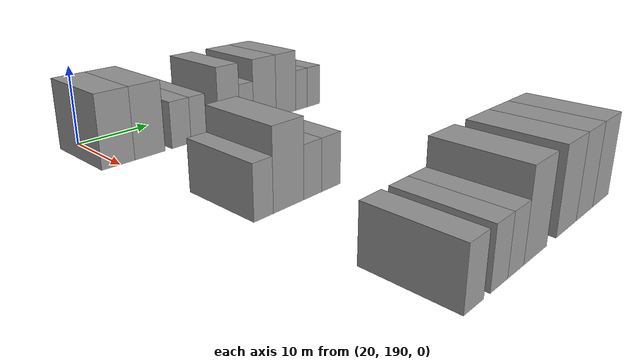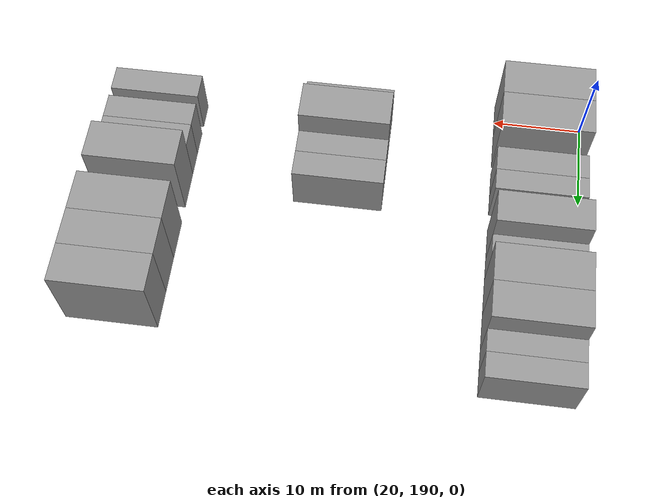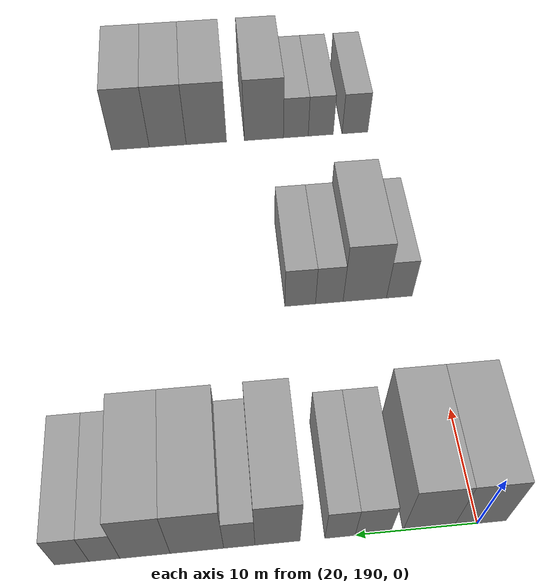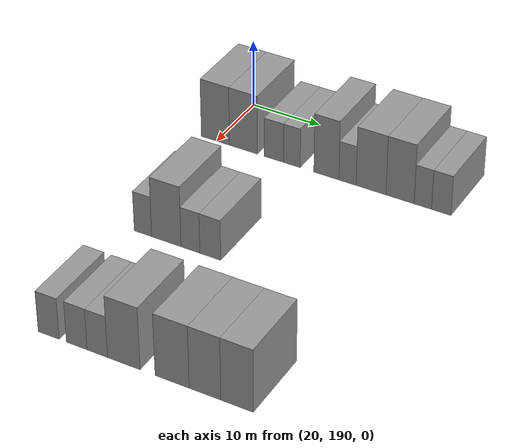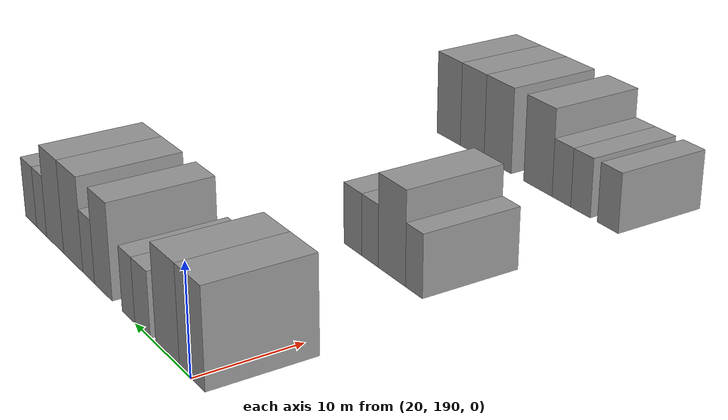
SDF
<sdf version="1.6">
 <world name="default">
  <model name="building_105">
   <static>1</static>
   <pose>25.0000 189.8012 0 0.000000 0.000000 0.000000</pose>
   <link name="link">
    <pose>0 0 4.50 0 0 0</pose>
    <collision name="collision"><geometry><box><size>10.0000 4.2934 9.0000</size></box></geometry></collision>
    <visual name="visual">
     <cast_shadows>0</cast_shadows>
     <geometry><box><size>10.0000 4.2934 9.0000</size></box></geometry>
     <material>
      <script>
       <uri>model://grey_wall/materials/scripts</uri>
       <uri>model://grey_wall/materials/textures</uri>
       <name>vrc/grey_wall</name>
      </script>
     </material>
    </visual>
   </link>
  </model>
  <model name="building_106">
   <static>1</static>
   <pose>25.0000 194.0590 0 0.000000 0.000000 0.000000</pose>
   <link name="link">
    <pose>0 0 4.50 0 0 0</pose>
    <collision name="collision"><geometry><box><size>10.0000 4.2221 9.0000</size></box></geometry></collision>
    <visual name="visual">
     <cast_shadows>0</cast_shadows>
     <geometry><box><size>10.0000 4.2221 9.0000</size></box></geometry>
     <material>
      <script>
       <uri>model://grey_wall/materials/scripts</uri>
       <uri>model://grey_wall/materials/textures</uri>
       <name>vrc/grey_wall</name>
      </script>
     </material>
    </visual>
   </link>
  </model>
  <model name="building_107">
   <static>1</static>
   <pose>25.0000 198.6280 0 0.000000 0.000000 0.000000</pose>
   <link name="link">
    <pose>0 0 3.00 0 0 0</pose>
    <collision name="collision"><geometry><box><size>10.0000 2.9160 6.0000</size></box></geometry></collision>
    <visual name="visual">
     <cast_shadows>0</cast_shadows>
     <geometry><box><size>10.0000 2.9160 6.0000</size></box></geometry>
     <material>
      <script>
       <uri>model://grey_wall/materials/scripts</uri>
       <uri>model://grey_wall/materials/textures</uri>
       <name>vrc/grey_wall</name>
      </script>
     </material>
    </visual>
   </link>
  </model>
  <model name="building_108">
   <static>1</static>
   <pose>25.0000 201.3166 0 0.000000 0.000000 0.000000</pose>
   <link name="link">
    <pose>0 0 3.00 0 0 0</pose>
    <collision name="collision"><geometry><box><size>10.0000 2.4613 6.0000</size></box></geometry></collision>
    <visual name="visual">
     <cast_shadows>0</cast_shadows>
     <geometry><box><size>10.0000 2.4613 6.0000</size></box></geometry>
     <material>
      <script>
       <uri>model://grey_wall/materials/scripts</uri>
       <uri>model://grey_wall/materials/textures</uri>
       <name>vrc/grey_wall</name>
      </script>
     </material>
    </visual>
   </link>
  </model>
  <model name="building_109">
   <static>1</static>
   <pose>25.0000 206.3667 0 0.000000 0.000000 0.000000</pose>
   <link name="link">
    <pose>0 0 4.50 0 0 0</pose>
    <collision name="collision"><geometry><box><size>10.0000 3.6388 9.0000</size></box></geometry></collision>
    <visual name="visual">
     <cast_shadows>0</cast_shadows>
     <geometry><box><size>10.0000 3.6388 9.0000</size></box></geometry>
     <material>
      <script>
       <uri>model://grey_wall/materials/scripts</uri>
       <uri>model://grey_wall/materials/textures</uri>
       <name>vrc/grey_wall</name>
      </script>
     </material>
    </visual>
   </link>
  </model>
  <model name="building_110">
   <static>1</static>
   <pose>25.0000 209.4341 0 0.000000 0.000000 0.000000</pose>
   <link name="link">
    <pose>0 0 3.00 0 0 0</pose>
    <collision name="collision"><geometry><box><size>10.0000 2.4960 6.0000</size></box></geometry></collision>
    <visual name="visual">
     <cast_shadows>0</cast_shadows>
     <geometry><box><size>10.0000 2.4960 6.0000</size></box></geometry>
     <material>
      <script>
       <uri>model://grey_wall/materials/scripts</uri>
       <uri>model://grey_wall/materials/textures</uri>
       <name>vrc/grey_wall</name>
      </script>
     </material>
    </visual>
   </link>
  </model>
  <model name="building_111">
   <static>1</static>
   <pose>25.0000 212.8134 0 0.000000 0.000000 0.000000</pose>
   <link name="link">
    <pose>0 0 4.50 0 0 0</pose>
    <collision name="collision"><geometry><box><size>10.0000 4.2626 9.0000</size></box></geometry></collision>
    <visual name="visual">
     <cast_shadows>0</cast_shadows>
     <geometry><box><size>10.0000 4.2626 9.0000</size></box></geometry>
     <material>
      <script>
       <uri>model://grey_wall/materials/scripts</uri>
       <uri>model://grey_wall/materials/textures</uri>
       <name>vrc/grey_wall</name>
      </script>
     </material>
    </visual>
   </link>
  </model>
  <model name="building_112">
   <static>1</static>
   <pose>25.0000 216.9367 0 0.000000 0.000000 0.000000</pose>
   <link name="link">
    <pose>0 0 4.50 0 0 0</pose>
    <collision name="collision"><geometry><box><size>10.0000 3.9840 9.0000</size></box></geometry></collision>
    <visual name="visual">
     <cast_shadows>0</cast_shadows>
     <geometry><box><size>10.0000 3.9840 9.0000</size></box></geometry>
     <material>
      <script>
       <uri>model://grey_wall/materials/scripts</uri>
       <uri>model://grey_wall/materials/textures</uri>
       <name>vrc/grey_wall</name>
      </script>
     </material>
    </visual>
   </link>
  </model>
  <model name="building_113">
   <static>1</static>
   <pose>25.0000 220.1398 0 0.000000 0.000000 0.000000</pose>
   <link name="link">
    <pose>0 0 3.00 0 0 0</pose>
    <collision name="collision"><geometry><box><size>10.0000 2.4222 6.0000</size></box></geometry></collision>
    <visual name="visual">
     <cast_shadows>0</cast_shadows>
     <geometry><box><size>10.0000 2.4222 6.0000</size></box></geometry>
     <material>
      <script>
       <uri>model://grey_wall/materials/scripts</uri>
       <uri>model://grey_wall/materials/textures</uri>
       <name>vrc/grey_wall</name>
      </script>
     </material>
    </visual>
   </link>
  </model>
  <model name="building_114">
   <static>1</static>
   <pose>25.0000 222.7028 0 0.000000 0.000000 0.000000</pose>
   <link name="link">
    <pose>0 0 3.00 0 0 0</pose>
    <collision name="collision"><geometry><box><size>10.0000 2.7039 6.0000</size></box></geometry></collision>
    <visual name="visual">
     <cast_shadows>0</cast_shadows>
     <geometry><box><size>10.0000 2.7039 6.0000</size></box></geometry>
     <material>
      <script>
       <uri>model://grey_wall/materials/scripts</uri>
       <uri>model://grey_wall/materials/textures</uri>
       <name>vrc/grey_wall</name>
      </script>
     </material>
    </visual>
   </link>
  </model>
  <model name="building_218">
   <static>1</static>
   <pose>47.0000 192.3309 0 0.000000 0.000000 0.000000</pose>
   <link name="link">
    <pose>0 0 3.00 0 0 0</pose>
    <collision name="collision"><geometry><box><size>10.0000 2.5325 6.0000</size></box></geometry></collision>
    <visual name="visual">
     <cast_shadows>0</cast_shadows>
     <geometry><box><size>10.0000 2.5325 6.0000</size></box></geometry>
     <material>
      <script>
       <uri>model://grey_wall/materials/scripts</uri>
       <uri>model://grey_wall/materials/textures</uri>
       <name>vrc/grey_wall</name>
      </script>
     </material>
    </visual>
   </link>
  </model>
  <model name="building_219">
   <static>1</static>
   <pose>47.0000 195.7220 0 0.000000 0.000000 0.000000</pose>
   <link name="link">
    <pose>0 0 4.50 0 0 0</pose>
    <collision name="collision"><geometry><box><size>10.0000 4.2497 9.0000</size></box></geometry></collision>
    <visual name="visual">
     <cast_shadows>0</cast_shadows>
     <geometry><box><size>10.0000 4.2497 9.0000</size></box></geometry>
     <material>
      <script>
       <uri>model://grey_wall/materials/scripts</uri>
       <uri>model://grey_wall/materials/textures</uri>
       <name>vrc/grey_wall</name>
      </script>
     </material>
    </visual>
   </link>
  </model>
  <model name="building_220">
   <static>1</static>
   <pose>47.0000 199.1849 0 0.000000 0.000000 0.000000</pose>
   <link name="link">
    <pose>0 0 3.00 0 0 0</pose>
    <collision name="collision"><geometry><box><size>10.0000 2.6760 6.0000</size></box></geometry></collision>
    <visual name="visual">
     <cast_shadows>0</cast_shadows>
     <geometry><box><size>10.0000 2.6760 6.0000</size></box></geometry>
     <material>
      <script>
       <uri>model://grey_wall/materials/scripts</uri>
       <uri>model://grey_wall/materials/textures</uri>
       <name>vrc/grey_wall</name>
      </script>
     </material>
    </visual>
   </link>
  </model>
  <model name="building_221">
   <static>1</static>
   <pose>47.0000 202.0055 0 0.000000 0.000000 0.000000</pose>
   <link name="link">
    <pose>0 0 3.00 0 0 0</pose>
    <collision name="collision"><geometry><box><size>10.0000 2.9652 6.0000</size></box></geometry></collision>
    <visual name="visual">
     <cast_shadows>0</cast_shadows>
     <geometry><box><size>10.0000 2.9652 6.0000</size></box></geometry>
     <material>
      <script>
       <uri>model://grey_wall/materials/scripts</uri>
       <uri>model://grey_wall/materials/textures</uri>
       <name>vrc/grey_wall</name>
      </script>
     </material>
    </visual>
   </link>
  </model>
  <model name="building_327">
   <static>1</static>
   <pose>69.0000 193.2638 0 0.000000 0.000000 0.000000</pose>
   <link name="link">
    <pose>0 0 3.00 0 0 0</pose>
    <collision name="collision"><geometry><box><size>10.0000 2.9274 6.0000</size></box></geometry></collision>
    <visual name="visual">
     <cast_shadows>0</cast_shadows>
     <geometry><box><size>10.0000 2.9274 6.0000</size></box></geometry>
     <material>
      <script>
       <uri>model://grey_wall/materials/scripts</uri>
       <uri>model://grey_wall/materials/textures</uri>
       <name>vrc/grey_wall</name>
      </script>
     </material>
    </visual>
   </link>
  </model>
  <model name="building_328">
   <static>1</static>
   <pose>69.0000 197.1477 0 0.000000 0.000000 0.000000</pose>
   <link name="link">
    <pose>0 0 3.00 0 0 0</pose>
    <collision name="collision"><geometry><box><size>10.0000 2.8405 6.0000</size></box></geometry></collision>
    <visual name="visual">
     <cast_shadows>0</cast_shadows>
     <geometry><box><size>10.0000 2.8405 6.0000</size></box></geometry>
     <material>
      <script>
       <uri>model://grey_wall/materials/scripts</uri>
       <uri>model://grey_wall/materials/textures</uri>
       <name>vrc/grey_wall</name>
      </script>
     </material>
    </visual>
   </link>
  </model>
  <model name="building_329">
   <static>1</static>
   <pose>69.0000 199.9684 0 0.000000 0.000000 0.000000</pose>
   <link name="link">
    <pose>0 0 3.00 0 0 0</pose>
    <collision name="collision"><geometry><box><size>10.0000 2.8009 6.0000</size></box></geometry></collision>
    <visual name="visual">
     <cast_shadows>0</cast_shadows>
     <geometry><box><size>10.0000 2.8009 6.0000</size></box></geometry>
     <material>
      <script>
       <uri>model://grey_wall/materials/scripts</uri>
       <uri>model://grey_wall/materials/textures</uri>
       <name>vrc/grey_wall</name>
      </script>
     </material>
    </visual>
   </link>
  </model>
  <model name="building_330">
   <static>1</static>
   <pose>69.0000 203.5645 0 0.000000 0.000000 0.000000</pose>
   <link name="link">
    <pose>0 0 4.50 0 0 0</pose>
    <collision name="collision"><geometry><box><size>10.0000 4.3913 9.0000</size></box></geometry></collision>
    <visual name="visual">
     <cast_shadows>0</cast_shadows>
     <geometry><box><size>10.0000 4.3913 9.0000</size></box></geometry>
     <material>
      <script>
       <uri>model://grey_wall/materials/scripts</uri>
       <uri>model://grey_wall/materials/textures</uri>
       <name>vrc/grey_wall</name>
      </script>
     </material>
    </visual>
   </link>
  </model>
  <model name="building_331">
   <static>1</static>
   <pose>69.0000 210.0040 0 0.000000 0.000000 0.000000</pose>
   <link name="link">
    <pose>0 0 4.50 0 0 0</pose>
    <collision name="collision"><geometry><box><size>10.0000 4.4877 9.0000</size></box></geometry></collision>
    <visual name="visual">
     <cast_shadows>0</cast_shadows>
     <geometry><box><size>10.0000 4.4877 9.0000</size></box></geometry>
     <material>
      <script>
       <uri>model://grey_wall/materials/scripts</uri>
       <uri>model://grey_wall/materials/textures</uri>
       <name>vrc/grey_wall</name>
      </script>
     </material>
    </visual>
   </link>
  </model>
  <model name="building_332">
   <static>1</static>
   <pose>69.0000 214.3051 0 0.000000 0.000000 0.000000</pose>
   <link name="link">
    <pose>0 0 4.50 0 0 0</pose>
    <collision name="collision"><geometry><box><size>10.0000 4.1144 9.0000</size></box></geometry></collision>
    <visual name="visual">
     <cast_shadows>0</cast_shadows>
     <geometry><box><size>10.0000 4.1144 9.0000</size></box></geometry>
     <material>
      <script>
       <uri>model://grey_wall/materials/scripts</uri>
       <uri>model://grey_wall/materials/textures</uri>
       <name>vrc/grey_wall</name>
      </script>
     </material>
    </visual>
   </link>
  </model>
  <model name="building_333">
   <static>1</static>
   <pose>69.0000 218.4509 0 0.000000 0.000000 0.000000</pose>
   <link name="link">
    <pose>0 0 4.50 0 0 0</pose>
    <collision name="collision"><geometry><box><size>10.0000 4.1772 9.0000</size></box></geometry></collision>
    <visual name="visual">
     <cast_shadows>0</cast_shadows>
     <geometry><box><size>10.0000 4.1772 9.0000</size></box></geometry>
     <material>
      <script>
       <uri>model://grey_wall/materials/scripts</uri>
       <uri>model://grey_wall/materials/textures</uri>
       <name>vrc/grey_wall</name>
      </script>
     </material>
    </visual>
   </link>
  </model>
 </world>
</sdf>
